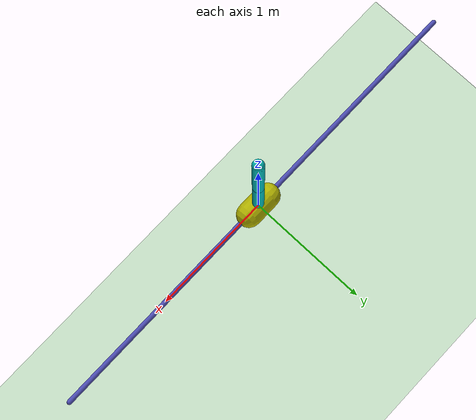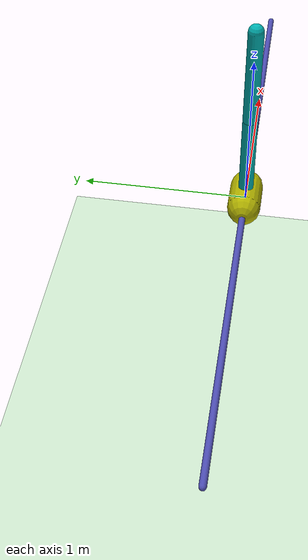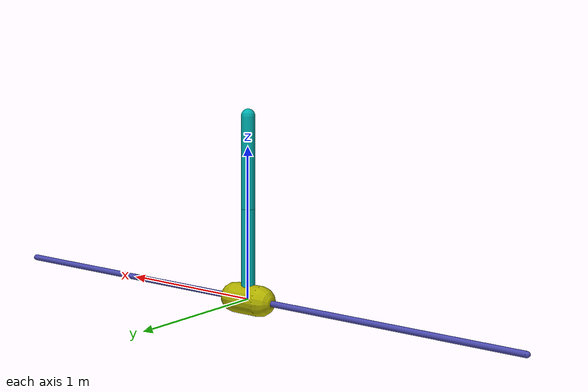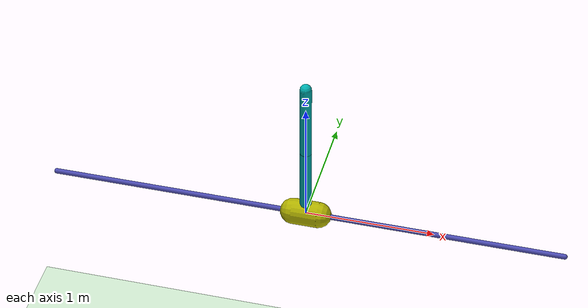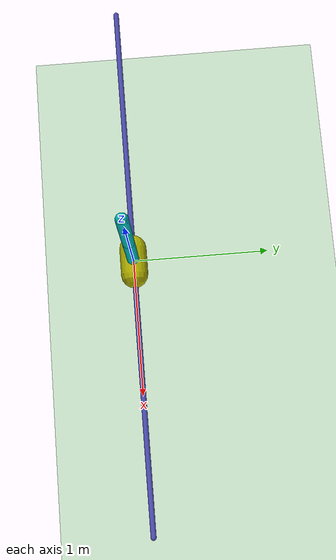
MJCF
<mujoco model="cartpole">
  <compiler coordinate="local" inertiafromgeom="true"/>
  <custom>
    <numeric data="2" name="frame_skip"/>
  </custom>
  <default>
    <joint damping="0.05"/>
    <geom contype="0" friction="1 0.1 0.1" rgba="0.7 0.7 0 1"/>
  </default>
  <option gravity="1e-5 0 -9.81" integrator="RK4" timestep="0.01"/>
  <size nstack="3000"/>

  <worldbody>
    <geom name="floor" pos="0 0 -3.0" rgba="0.8 0.9 0.8 1" size="40 40 40" type="plane"/>
    <geom name="rail" pos="0 0 0" quat="0.707 0 0.707 0" rgba="0.3 0.3 0.7 1" size="0.02 2" type="capsule"/>
    <body name="cart" pos="0 0 0">
      <joint axis="1 0 0" limited="true" margin="0.01" name="slider" pos="0 0 0" range="-2 2" type="slide"/>
      <geom name="cart" pos="0 0 0" fromto='-0.1 0 0 0.1 0 0' size="0.1" type="capsule"/>

      <body name="pole_0" pos="0 0 0.0">
        <joint axis="0 1 0" name="hinge_0" pos="0 0 0" type="hinge"/>
        <geom fromto="0 0 0 0 0 0.6" name="cpole_0" rgba="0 0.7 0.7 1" size="0.045" type="capsule"/>

        <body name="pole_1" pos="0 0 0.6">
          <joint axis="0 1 0" name="hinge_1" pos="0 0 0" type="hinge"/>
          <geom fromto="0 0 0 0 0 0.6" name="cpole_1" rgba="0 0.7 0.7 1" size="0.045" type="capsule"/>

          <site name="tip" pos="0 0 .6" size="0.01 0.01"/>
        </body>
      </body>

    </body>
  </worldbody>
  <actuator>
    <motor ctrllimited="true" ctrlrange="-1.0 1.0" joint="slider" gear="500"/>
  </actuator>

</mujoco>
